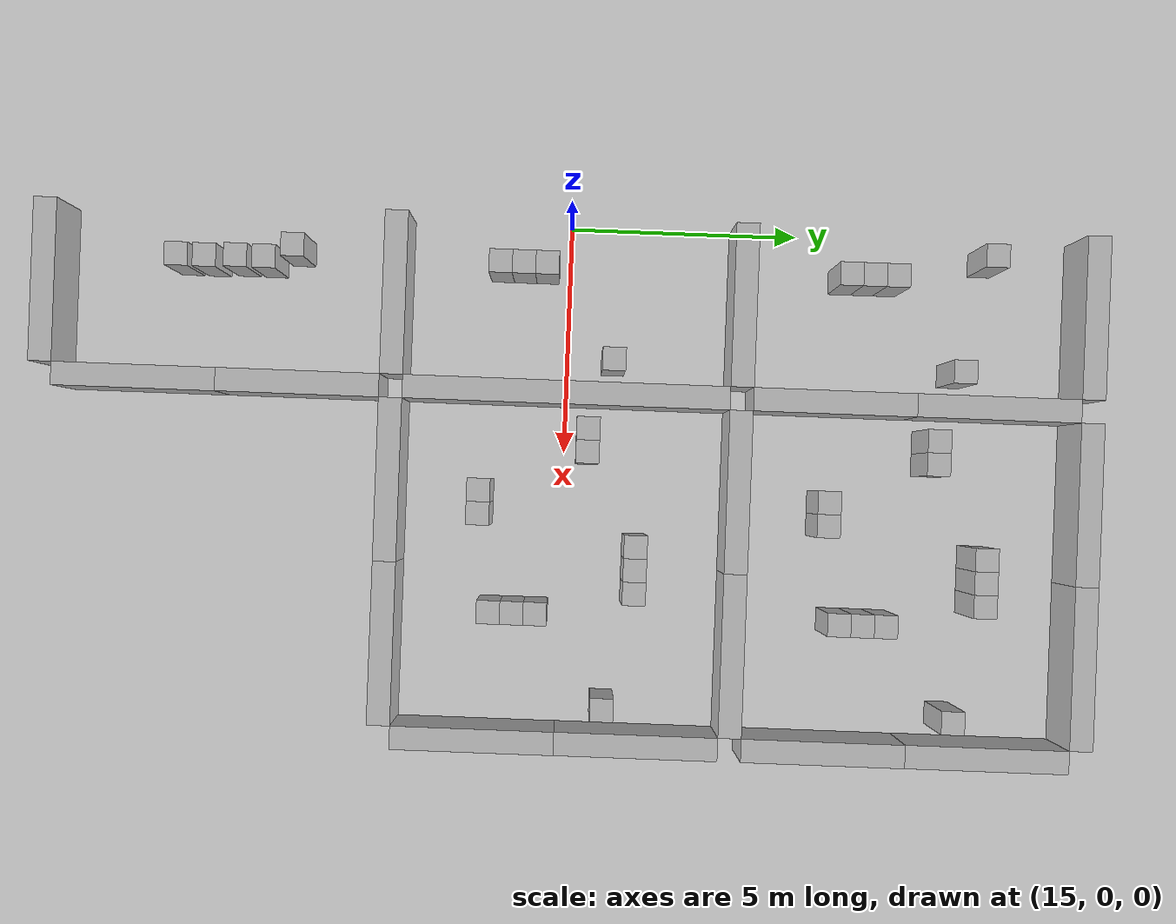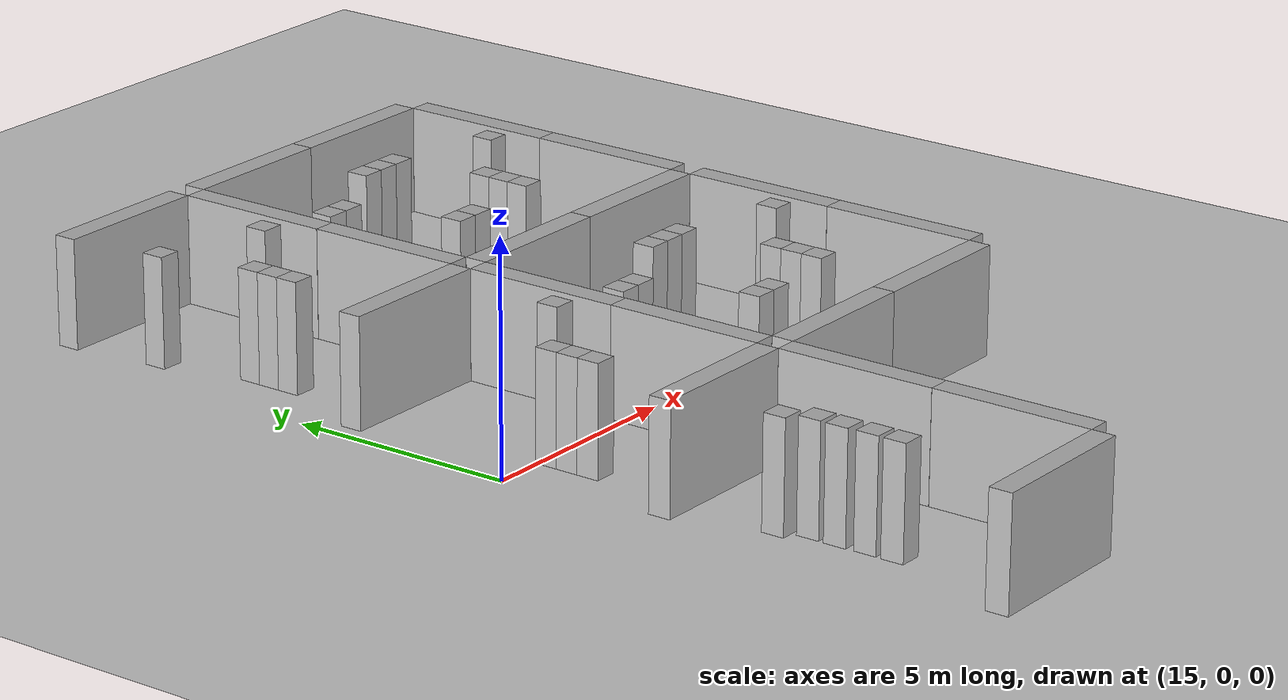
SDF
<sdf version="1.6">
 <world name="default">
  <model name="ground_plane">
   <static>1</static>
   <link name="link">
    <collision name="collision">
     <geometry><plane><normal>0 0 1</normal><size>100 100</size></plane></geometry>
     <surface><friction><ode><mu>100</mu><mu2>50</mu2></ode></friction></surface>
    </collision>
    <visual name="visual">
     <cast_shadows>0</cast_shadows>
     <geometry><plane><normal>0 0 1</normal><size>100 100</size></plane></geometry>
     <material>
      <script><uri>file://media/materials/scripts/gazebo.material</uri><name>Gazebo/Grey</name></script>
     </material>
    </visual>
   </link>
  </model>
  <model name="mywall0_1_clone_1_clone_0">
   <static>1</static>
   <link name="link">
    <pose>0 0 1.4 0 -0 0</pose>
    <collision name="collision"><geometry><box><size>3.5 0.5 2.4</size></box></geometry></collision>
    <visual name="visual">
     <cast_shadows>0</cast_shadows>
     <geometry><box><size>3.5 0.5 2.4</size></box></geometry>
     <material>
      <script>
       <uri>model://mywall0/materials/scripts</uri>
       <uri>model://mywall0/materials/textures</uri>
       <name>vrc/mywall0</name>
      </script>
     </material>
    </visual>
   </link>
   <pose>16.75 3.75 0 0 -0 0</pose>
  </model>
  <model name="mywall0_1_clone_1_clone_1">
   <static>1</static>
   <link name="link">
    <pose>0 0 1.4 0 -0 0</pose>
    <collision name="collision"><geometry><box><size>3.5 0.5 2.4</size></box></geometry></collision>
    <visual name="visual">
     <cast_shadows>0</cast_shadows>
     <geometry><box><size>3.5 0.5 2.4</size></box></geometry>
     <material>
      <script>
       <uri>model://mywall0/materials/scripts</uri>
       <uri>model://mywall0/materials/textures</uri>
       <name>vrc/mywall0</name>
      </script>
     </material>
    </visual>
   </link>
   <pose>16.75 -3.75 0 0 -0 0</pose>
  </model>
  <model name="mywall0_4_clone_0_clone_clone_0">
   <static>1</static>
   <link name="link">
    <pose>0 0 1.4 0 -0 0</pose>
    <collision name="collision"><geometry><box><size>3.5 0.5 2.4</size></box></geometry></collision>
    <visual name="visual">
     <cast_shadows>0</cast_shadows>
     <geometry><box><size>3.5 0.5 2.4</size></box></geometry>
     <material>
      <script>
       <uri>model://mywall0/materials/scripts</uri>
       <uri>model://mywall0/materials/textures</uri>
       <name>vrc/mywall0</name>
      </script>
     </material>
    </visual>
   </link>
   <pose>18.75 1.75 0 0 -0 1.57</pose>
  </model>
  <model name="mywall0_4_clone_0_clone_clone_0_clone">
   <static>1</static>
   <link name="link">
    <pose>0 0 1.4 0 -0 0</pose>
    <collision name="collision"><geometry><box><size>3.5 0.5 2.4</size></box></geometry></collision>
    <visual name="visual">
     <cast_shadows>0</cast_shadows>
     <geometry><box><size>3.5 0.5 2.4</size></box></geometry>
     <material>
      <script>
       <uri>model://mywall0/materials/scripts</uri>
       <uri>model://mywall0/materials/textures</uri>
       <name>vrc/mywall0</name>
      </script>
     </material>
    </visual>
   </link>
   <pose>18.75 -1.75 0 0 -0 1.57</pose>
  </model>
  <model name="mywall0_1_clone_1_clone_2">
   <static>1</static>
   <link name="link">
    <pose>0 0 1.4 0 -0 0</pose>
    <collision name="collision"><geometry><box><size>3.5 0.5 2.4</size></box></geometry></collision>
    <visual name="visual">
     <cast_shadows>0</cast_shadows>
     <geometry><box><size>3.5 0.5 2.4</size></box></geometry>
     <material>
      <script>
       <uri>model://mywall0/materials/scripts</uri>
       <uri>model://mywall0/materials/textures</uri>
       <name>vrc/mywall0</name>
      </script>
     </material>
    </visual>
   </link>
   <pose>20.75 3.75 0 0 -0 0</pose>
  </model>
  <model name="mywall0_1_clone_1_clone_3">
   <static>1</static>
   <link name="link">
    <pose>0 0 1.4 0 -0 0</pose>
    <collision name="collision"><geometry><box><size>3.5 0.5 2.4</size></box></geometry></collision>
    <visual name="visual">
     <cast_shadows>0</cast_shadows>
     <geometry><box><size>3.5 0.5 2.4</size></box></geometry>
     <material>
      <script>
       <uri>model://mywall0/materials/scripts</uri>
       <uri>model://mywall0/materials/textures</uri>
       <name>vrc/mywall0</name>
      </script>
     </material>
    </visual>
   </link>
   <pose>24.25 3.75 0 0 -0 0</pose>
  </model>
  <model name="mywall0_1_clone_1_clone_4">
   <static>1</static>
   <link name="link">
    <pose>0 0 1.4 0 -0 0</pose>
    <collision name="collision"><geometry><box><size>3.5 0.5 2.4</size></box></geometry></collision>
    <visual name="visual">
     <cast_shadows>0</cast_shadows>
     <geometry><box><size>3.5 0.5 2.4</size></box></geometry>
     <material>
      <script>
       <uri>model://mywall0/materials/scripts</uri>
       <uri>model://mywall0/materials/textures</uri>
       <name>vrc/mywall0</name>
      </script>
     </material>
    </visual>
   </link>
   <pose>20.75 -3.75 0 0 -0 0</pose>
  </model>
  <model name="mywall0_1_clone_1_clone_5">
   <static>1</static>
   <link name="link">
    <pose>0 0 1.4 0 -0 0</pose>
    <collision name="collision"><geometry><box><size>3.5 0.5 2.4</size></box></geometry></collision>
    <visual name="visual">
     <cast_shadows>0</cast_shadows>
     <geometry><box><size>3.5 0.5 2.4</size></box></geometry>
     <material>
      <script>
       <uri>model://mywall0/materials/scripts</uri>
       <uri>model://mywall0/materials/textures</uri>
       <name>vrc/mywall0</name>
      </script>
     </material>
    </visual>
   </link>
   <pose>24.25 -3.75 0 0 -0 0</pose>
  </model>
  <model name="mywall0_4_clone_0_clone_clone_0_clone_0">
   <static>1</static>
   <link name="link">
    <pose>0 0 1.4 0 -0 0</pose>
    <collision name="collision"><geometry><box><size>3.5 0.5 2.4</size></box></geometry></collision>
    <visual name="visual">
     <cast_shadows>0</cast_shadows>
     <geometry><box><size>3.5 0.5 2.4</size></box></geometry>
     <material>
      <script>
       <uri>model://mywall0/materials/scripts</uri>
       <uri>model://mywall0/materials/textures</uri>
       <name>vrc/mywall0</name>
      </script>
     </material>
    </visual>
   </link>
   <pose>26.25 1.75 0 0 -0 1.57</pose>
  </model>
  <model name="mywall0_4_clone_0_clone_clone_0_clone_1">
   <static>1</static>
   <link name="link">
    <pose>0 0 1.4 0 -0 0</pose>
    <collision name="collision"><geometry><box><size>3.5 0.5 2.4</size></box></geometry></collision>
    <visual name="visual">
     <cast_shadows>0</cast_shadows>
     <geometry><box><size>3.5 0.5 2.4</size></box></geometry>
     <material>
      <script>
       <uri>model://mywall0/materials/scripts</uri>
       <uri>model://mywall0/materials/textures</uri>
       <name>vrc/mywall0</name>
      </script>
     </material>
    </visual>
   </link>
   <pose>26.25 -1.75 0 0 -0 1.57</pose>
  </model>
  <model name="mywall0_4_clone_0_clone_clone_0_clone_8">
   <static>1</static>
   <link name="link">
    <pose>0 0 1.4 0 -0 0</pose>
    <collision name="collision"><geometry><box><size>3.5 0.5 2.4</size></box></geometry></collision>
    <visual name="visual">
     <cast_shadows>0</cast_shadows>
     <geometry><box><size>3.5 0.5 2.4</size></box></geometry>
     <material>
      <script>
       <uri>model://mywall0/materials/scripts</uri>
       <uri>model://mywall0/materials/textures</uri>
       <name>vrc/mywall0</name>
      </script>
     </material>
    </visual>
   </link>
   <pose>18.75 5.75 0 0 -0 1.57</pose>
  </model>
  <model name="mywall0_4_clone_0_clone_clone_0_clone_9">
   <static>1</static>
   <link name="link">
    <pose>0 0 1.4 0 -0 0</pose>
    <collision name="collision"><geometry><box><size>3.5 0.5 2.4</size></box></geometry></collision>
    <visual name="visual">
     <cast_shadows>0</cast_shadows>
     <geometry><box><size>3.5 0.5 2.4</size></box></geometry>
     <material>
      <script>
       <uri>model://mywall0/materials/scripts</uri>
       <uri>model://mywall0/materials/textures</uri>
       <name>vrc/mywall0</name>
      </script>
     </material>
    </visual>
   </link>
   <pose>18.75 9.25 0 0 -0 1.57</pose>
  </model>
  <model name="mywall0_4_clone_0_clone_clone_0_clone_10">
   <static>1</static>
   <link name="link">
    <pose>0 0 1.4 0 -0 0</pose>
    <collision name="collision"><geometry><box><size>3.5 0.5 2.4</size></box></geometry></collision>
    <visual name="visual">
     <cast_shadows>0</cast_shadows>
     <geometry><box><size>3.5 0.5 2.4</size></box></geometry>
     <material>
      <script>
       <uri>model://mywall0/materials/scripts</uri>
       <uri>model://mywall0/materials/textures</uri>
       <name>vrc/mywall0</name>
      </script>
     </material>
    </visual>
   </link>
   <pose>26.25 5.75 0 0 -0 1.57</pose>
  </model>
  <model name="mywall0_4_clone_0_clone_clone_0_clone_11">
   <static>1</static>
   <link name="link">
    <pose>0 0 1.4 0 -0 0</pose>
    <collision name="collision"><geometry><box><size>3.5 0.5 2.4</size></box></geometry></collision>
    <visual name="visual">
     <cast_shadows>0</cast_shadows>
     <geometry><box><size>3.5 0.5 2.4</size></box></geometry>
     <material>
      <script>
       <uri>model://mywall0/materials/scripts</uri>
       <uri>model://mywall0/materials/textures</uri>
       <name>vrc/mywall0</name>
      </script>
     </material>
    </visual>
   </link>
   <pose>26.25 9.25 0 0 -0 1.57</pose>
  </model>
  <model name="mywall0_1_clone_1_clone_3_clone">
   <static>1</static>
   <link name="link">
    <pose>0 0 1.4 0 -0 0</pose>
    <collision name="collision"><geometry><box><size>3.5 0.5 2.4</size></box></geometry></collision>
    <visual name="visual">
     <cast_shadows>0</cast_shadows>
     <geometry><box><size>3.5 0.5 2.4</size></box></geometry>
     <material>
      <script>
       <uri>model://mywall0/materials/scripts</uri>
       <uri>model://mywall0/materials/textures</uri>
       <name>vrc/mywall0</name>
      </script>
     </material>
    </visual>
   </link>
   <pose>24.25 11.25 0 0 -0 0</pose>
  </model>
  <model name="mywall0_1_clone_1_clone_3_clone_0">
   <static>1</static>
   <link name="link">
    <pose>0 0 1.4 0 -0 0</pose>
    <collision name="collision"><geometry><box><size>3.5 0.5 2.4</size></box></geometry></collision>
    <visual name="visual">
     <cast_shadows>0</cast_shadows>
     <geometry><box><size>3.5 0.5 2.4</size></box></geometry>
     <material>
      <script>
       <uri>model://mywall0/materials/scripts</uri>
       <uri>model://mywall0/materials/textures</uri>
       <name>vrc/mywall0</name>
      </script>
     </material>
    </visual>
   </link>
   <pose>20.75 11.25 0 0 -0 0</pose>
  </model>
  <model name="mywall0_1_clone_1_clone_3_clone_1">
   <static>1</static>
   <link name="link">
    <pose>0 0 1.4 0 -0 0</pose>
    <collision name="collision"><geometry><box><size>3.5 0.5 2.4</size></box></geometry></collision>
    <visual name="visual">
     <cast_shadows>0</cast_shadows>
     <geometry><box><size>3.5 0.5 2.4</size></box></geometry>
     <material>
      <script>
       <uri>model://mywall0/materials/scripts</uri>
       <uri>model://mywall0/materials/textures</uri>
       <name>vrc/mywall0</name>
      </script>
     </material>
    </visual>
   </link>
   <pose>16.75 11.25 0 0 -0 0</pose>
  </model>
  <model name="mypillar_1_clone_clone_4">
   <static>1</static>
   <link name="link">
    <pose>0 0 1.4 0 -0 0</pose>
    <collision name="collision"><geometry><box><size>0.5 0.5 2.4</size></box></geometry></collision>
    <visual name="visual">
     <cast_shadows>0</cast_shadows>
     <geometry><box><size>0.5 0.5 2.4</size></box></geometry>
     <material>
      <script>
       <uri>model://mypillar/materials/scripts</uri>
       <uri>model://mypillar/materials/textures</uri>
       <name>vrc/mypillar</name>
      </script>
     </material>
    </visual>
   </link>
   <pose>16 -1.5 0 0 -0 0</pose>
  </model>
  <model name="mypillar_1_clone_clone_4_clone">
   <static>1</static>
   <link name="link">
    <pose>0 0 1.4 0 -0 0</pose>
    <collision name="collision"><geometry><box><size>0.5 0.5 2.4</size></box></geometry></collision>
    <visual name="visual">
     <cast_shadows>0</cast_shadows>
     <geometry><box><size>0.5 0.5 2.4</size></box></geometry>
     <material>
      <script>
       <uri>model://mypillar/materials/scripts</uri>
       <uri>model://mypillar/materials/textures</uri>
       <name>vrc/mypillar</name>
      </script>
     </material>
    </visual>
   </link>
   <pose>16 -1 0 0 -0 0</pose>
  </model>
  <model name="mypillar_1_clone_clone_4_clone_0">
   <static>1</static>
   <link name="link">
    <pose>0 0 1.4 0 -0 0</pose>
    <collision name="collision"><geometry><box><size>0.5 0.5 2.4</size></box></geometry></collision>
    <visual name="visual">
     <cast_shadows>0</cast_shadows>
     <geometry><box><size>0.5 0.5 2.4</size></box></geometry>
     <material>
      <script>
       <uri>model://mypillar/materials/scripts</uri>
       <uri>model://mypillar/materials/textures</uri>
       <name>vrc/mypillar</name>
      </script>
     </material>
    </visual>
   </link>
   <pose>16 -0.5 0 0 -0 0</pose>
  </model>
  <model name="mypillar_1_clone_clone_4_clone_1">
   <static>1</static>
   <link name="link">
    <pose>0 0 1.4 0 -0 0</pose>
    <collision name="collision"><geometry><box><size>0.5 0.5 2.4</size></box></geometry></collision>
    <visual name="visual">
     <cast_shadows>0</cast_shadows>
     <geometry><box><size>0.5 0.5 2.4</size></box></geometry>
     <material>
      <script>
       <uri>model://mypillar/materials/scripts</uri>
       <uri>model://mypillar/materials/textures</uri>
       <name>vrc/mypillar</name>
      </script>
     </material>
    </visual>
   </link>
   <pose>18 1 0 0 -0 0</pose>
  </model>
  <model name="mypillar_1_clone_clone_4_clone_2_clone_3">
   <static>1</static>
   <link name="link">
    <pose>0 0 1.4 0 -0 0</pose>
    <collision name="collision"><geometry><box><size>0.5 0.5 2.4</size></box></geometry></collision>
    <visual name="visual">
     <cast_shadows>0</cast_shadows>
     <geometry><box><size>0.5 0.5 2.4</size></box></geometry>
     <material>
      <script>
       <uri>model://mypillar/materials/scripts</uri>
       <uri>model://mypillar/materials/textures</uri>
       <name>vrc/mypillar</name>
      </script>
     </material>
    </visual>
   </link>
   <pose>15.5 9.1 0 0 -0 0</pose>
  </model>
  <model name="mypillar_1_clone_clone_4_clone_2_clone_6">
   <static>1</static>
   <link name="link">
    <pose>0 0 1.4 0 -0 0</pose>
    <collision name="collision"><geometry><box><size>0.5 0.5 2.4</size></box></geometry></collision>
    <visual name="visual">
     <cast_shadows>0</cast_shadows>
     <geometry><box><size>0.5 0.5 2.4</size></box></geometry>
     <material>
      <script>
       <uri>model://mypillar/materials/scripts</uri>
       <uri>model://mypillar/materials/textures</uri>
       <name>vrc/mypillar</name>
      </script>
     </material>
    </visual>
   </link>
   <pose>16 6.5 0 0 -0 0</pose>
  </model>
  <model name="mypillar_1_clone_clone_4_clone_2_clone_7">
   <static>1</static>
   <link name="link">
    <pose>0 0 1.4 0 -0 0</pose>
    <collision name="collision"><geometry><box><size>0.5 0.5 2.4</size></box></geometry></collision>
    <visual name="visual">
     <cast_shadows>0</cast_shadows>
     <geometry><box><size>0.5 0.5 2.4</size></box></geometry>
     <material>
      <script>
       <uri>model://mypillar/materials/scripts</uri>
       <uri>model://mypillar/materials/textures</uri>
       <name>vrc/mypillar</name>
      </script>
     </material>
    </visual>
   </link>
   <pose>16 6 0 0 -0 0</pose>
  </model>
  <model name="mypillar_1_clone_clone_4_clone_2_clone_8">
   <static>1</static>
   <link name="link">
    <pose>0 0 1.4 0 -0 0</pose>
    <collision name="collision"><geometry><box><size>0.5 0.5 2.4</size></box></geometry></collision>
    <visual name="visual">
     <cast_shadows>0</cast_shadows>
     <geometry><box><size>0.5 0.5 2.4</size></box></geometry>
     <material>
      <script>
       <uri>model://mypillar/materials/scripts</uri>
       <uri>model://mypillar/materials/textures</uri>
       <name>vrc/mypillar</name>
      </script>
     </material>
    </visual>
   </link>
   <pose>16 7 0 0 -0 0</pose>
  </model>
  <model name="mypillar_1_clone_clone_4_clone_2_clone_9">
   <static>1</static>
   <link name="link">
    <pose>0 0 1.4 0 -0 0</pose>
    <collision name="collision"><geometry><box><size>0.5 0.5 2.4</size></box></geometry></collision>
    <visual name="visual">
     <cast_shadows>0</cast_shadows>
     <geometry><box><size>0.5 0.5 2.4</size></box></geometry>
     <material>
      <script>
       <uri>model://mypillar/materials/scripts</uri>
       <uri>model://mypillar/materials/textures</uri>
       <name>vrc/mypillar</name>
      </script>
     </material>
    </visual>
   </link>
   <pose>18 8.5 0 0 -0 0</pose>
  </model>
  <model name="mypillar_1_clone_clone_4_clone_2_clone_10">
   <static>1</static>
   <link name="link">
    <pose>0 0 1.4 0 -0 0</pose>
    <collision name="collision"><geometry><box><size>0.5 0.5 2.4</size></box></geometry></collision>
    <visual name="visual">
     <cast_shadows>0</cast_shadows>
     <geometry><box><size>0.5 0.5 2.4</size></box></geometry>
     <material>
      <script>
       <uri>model://mypillar/materials/scripts</uri>
       <uri>model://mypillar/materials/textures</uri>
       <name>vrc/mypillar</name>
      </script>
     </material>
    </visual>
   </link>
   <pose>19.5 8 0 0 -0 0</pose>
  </model>
  <model name="mypillar_1_clone_clone_4_clone_2_clone_11">
   <static>1</static>
   <link name="link">
    <pose>0 0 1.4 0 -0 0</pose>
    <collision name="collision"><geometry><box><size>0.5 0.5 2.4</size></box></geometry></collision>
    <visual name="visual">
     <cast_shadows>0</cast_shadows>
     <geometry><box><size>0.5 0.5 2.4</size></box></geometry>
     <material>
      <script>
       <uri>model://mypillar/materials/scripts</uri>
       <uri>model://mypillar/materials/textures</uri>
       <name>vrc/mypillar</name>
      </script>
     </material>
    </visual>
   </link>
   <pose>20 8 0 0 -0 0</pose>
  </model>
  <model name="mypillar_1_clone_clone_4_clone_2_clone_12">
   <static>1</static>
   <link name="link">
    <pose>0 0 1.4 0 -0 0</pose>
    <collision name="collision"><geometry><box><size>0.5 0.5 2.4</size></box></geometry></collision>
    <visual name="visual">
     <cast_shadows>0</cast_shadows>
     <geometry><box><size>0.5 0.5 2.4</size></box></geometry>
     <material>
      <script>
       <uri>model://mypillar/materials/scripts</uri>
       <uri>model://mypillar/materials/textures</uri>
       <name>vrc/mypillar</name>
      </script>
     </material>
    </visual>
   </link>
   <pose>22 9.1 0 0 -0 0</pose>
  </model>
  <model name="mypillar_1_clone_clone_4_clone_2_clone_13">
   <static>1</static>
   <link name="link">
    <pose>0 0 1.4 0 -0 0</pose>
    <collision name="collision"><geometry><box><size>0.5 0.5 2.4</size></box></geometry></collision>
    <visual name="visual">
     <cast_shadows>0</cast_shadows>
     <geometry><box><size>0.5 0.5 2.4</size></box></geometry>
     <material>
      <script>
       <uri>model://mypillar/materials/scripts</uri>
       <uri>model://mypillar/materials/textures</uri>
       <name>vrc/mypillar</name>
      </script>
     </material>
    </visual>
   </link>
   <pose>22.5 9.1 0 0 -0 0</pose>
  </model>
  <model name="mypillar_1_clone_clone_4_clone_2_clone_14">
   <static>1</static>
   <link name="link">
    <pose>0 0 1.4 0 -0 0</pose>
    <collision name="collision"><geometry><box><size>0.5 0.5 2.4</size></box></geometry></collision>
    <visual name="visual">
     <cast_shadows>0</cast_shadows>
     <geometry><box><size>0.5 0.5 2.4</size></box></geometry>
     <material>
      <script>
       <uri>model://mypillar/materials/scripts</uri>
       <uri>model://mypillar/materials/textures</uri>
       <name>vrc/mypillar</name>
      </script>
     </material>
    </visual>
   </link>
   <pose>23 9.1 0 0 -0 0</pose>
  </model>
  <model name="mypillar_1_clone_clone_4_clone_2_clone_15">
   <static>1</static>
   <link name="link">
    <pose>0 0 1.4 0 -0 0</pose>
    <collision name="collision"><geometry><box><size>0.5 0.5 2.4</size></box></geometry></collision>
    <visual name="visual">
     <cast_shadows>0</cast_shadows>
     <geometry><box><size>0.5 0.5 2.4</size></box></geometry>
     <material>
      <script>
       <uri>model://mypillar/materials/scripts</uri>
       <uri>model://mypillar/materials/textures</uri>
       <name>vrc/mypillar</name>
      </script>
     </material>
    </visual>
   </link>
   <pose>25.5 8.5 0 0 -0 0</pose>
  </model>
  <model name="mypillar_1_clone_clone_4_clone_2_clone_16">
   <static>1</static>
   <link name="link">
    <pose>0 0 1.4 0 -0 0</pose>
    <collision name="collision"><geometry><box><size>0.5 0.5 2.4</size></box></geometry></collision>
    <visual name="visual">
     <cast_shadows>0</cast_shadows>
     <geometry><box><size>0.5 0.5 2.4</size></box></geometry>
     <material>
      <script>
       <uri>model://mypillar/materials/scripts</uri>
       <uri>model://mypillar/materials/textures</uri>
       <name>vrc/mypillar</name>
      </script>
     </material>
    </visual>
   </link>
   <pose>23.5 7 0 0 -0 0</pose>
  </model>
  <model name="mypillar_1_clone_clone_4_clone_2_clone_17">
   <static>1</static>
   <link name="link">
    <pose>0 0 1.4 0 -0 0</pose>
    <collision name="collision"><geometry><box><size>0.5 0.5 2.4</size></box></geometry></collision>
    <visual name="visual">
     <cast_shadows>0</cast_shadows>
     <geometry><box><size>0.5 0.5 2.4</size></box></geometry>
     <material>
      <script>
       <uri>model://mypillar/materials/scripts</uri>
       <uri>model://mypillar/materials/textures</uri>
       <name>vrc/mypillar</name>
      </script>
     </material>
    </visual>
   </link>
   <pose>23.5 6.5 0 0 -0 0</pose>
  </model>
  <model name="mypillar_1_clone_clone_4_clone_2_clone_18">
   <static>1</static>
   <link name="link">
    <pose>0 0 1.4 0 -0 0</pose>
    <collision name="collision"><geometry><box><size>0.5 0.5 2.4</size></box></geometry></collision>
    <visual name="visual">
     <cast_shadows>0</cast_shadows>
     <geometry><box><size>0.5 0.5 2.4</size></box></geometry>
     <material>
      <script>
       <uri>model://mypillar/materials/scripts</uri>
       <uri>model://mypillar/materials/textures</uri>
       <name>vrc/mypillar</name>
      </script>
     </material>
    </visual>
   </link>
   <pose>23.5 6 0 0 -0 0</pose>
  </model>
  <model name="mypillar_1_clone_clone_4_clone_2_clone_19">
   <static>1</static>
   <link name="link">
    <pose>0 0 1.4 0 -0 0</pose>
    <collision name="collision"><geometry><box><size>0.5 0.5 2.4</size></box></geometry></collision>
    <visual name="visual">
     <cast_shadows>0</cast_shadows>
     <geometry><box><size>0.5 0.5 2.4</size></box></geometry>
     <material>
      <script>
       <uri>model://mypillar/materials/scripts</uri>
       <uri>model://mypillar/materials/textures</uri>
       <name>vrc/mypillar</name>
      </script>
     </material>
    </visual>
   </link>
   <pose>20.9 5.7 0 0 -0 0</pose>
  </model>
  <model name="mypillar_1_clone_clone_4_clone_2_clone_20">
   <static>1</static>
   <link name="link">
    <pose>0 0 1.4 0 -0 0</pose>
    <collision name="collision"><geometry><box><size>0.5 0.5 2.4</size></box></geometry></collision>
    <visual name="visual">
     <cast_shadows>0</cast_shadows>
     <geometry><box><size>0.5 0.5 2.4</size></box></geometry>
     <material>
      <script>
       <uri>model://mypillar/materials/scripts</uri>
       <uri>model://mypillar/materials/textures</uri>
       <name>vrc/mypillar</name>
      </script>
     </material>
    </visual>
   </link>
   <pose>21.4 5.7 0 0 -0 0</pose>
  </model>
  <model name="mypillar_1_clone_clone_4_clone_2_clone_21">
   <static>1</static>
   <link name="link">
    <pose>0 0 1.4 0 -0 0</pose>
    <collision name="collision"><geometry><box><size>0.5 0.5 2.4</size></box></geometry></collision>
    <visual name="visual">
     <cast_shadows>0</cast_shadows>
     <geometry><box><size>0.5 0.5 2.4</size></box></geometry>
     <material>
      <script>
       <uri>model://mypillar/materials/scripts</uri>
       <uri>model://mypillar/materials/textures</uri>
       <name>vrc/mypillar</name>
      </script>
     </material>
    </visual>
   </link>
   <pose>19.5 0.5 0 0 -0 0</pose>
  </model>
  <model name="mypillar_1_clone_clone_4_clone_2_clone_22">
   <static>1</static>
   <link name="link">
    <pose>0 0 1.4 0 -0 0</pose>
    <collision name="collision"><geometry><box><size>0.5 0.5 2.4</size></box></geometry></collision>
    <visual name="visual">
     <cast_shadows>0</cast_shadows>
     <geometry><box><size>0.5 0.5 2.4</size></box></geometry>
     <material>
      <script>
       <uri>model://mypillar/materials/scripts</uri>
       <uri>model://mypillar/materials/textures</uri>
       <name>vrc/mypillar</name>
      </script>
     </material>
    </visual>
   </link>
   <pose>20 0.5 0 0 -0 0</pose>
  </model>
  <model name="mypillar_1_clone_clone_4_clone_2_clone_23">
   <static>1</static>
   <link name="link">
    <pose>0 0 1.4 0 -0 0</pose>
    <collision name="collision"><geometry><box><size>0.5 0.5 2.4</size></box></geometry></collision>
    <visual name="visual">
     <cast_shadows>0</cast_shadows>
     <geometry><box><size>0.5 0.5 2.4</size></box></geometry>
     <material>
      <script>
       <uri>model://mypillar/materials/scripts</uri>
       <uri>model://mypillar/materials/textures</uri>
       <name>vrc/mypillar</name>
      </script>
     </material>
    </visual>
   </link>
   <pose>22 1.6 0 0 -0 0</pose>
  </model>
  <model name="mypillar_1_clone_clone_4_clone_2_clone_24">
   <static>1</static>
   <link name="link">
    <pose>0 0 1.4 0 -0 0</pose>
    <collision name="collision"><geometry><box><size>0.5 0.5 2.4</size></box></geometry></collision>
    <visual name="visual">
     <cast_shadows>0</cast_shadows>
     <geometry><box><size>0.5 0.5 2.4</size></box></geometry>
     <material>
      <script>
       <uri>model://mypillar/materials/scripts</uri>
       <uri>model://mypillar/materials/textures</uri>
       <name>vrc/mypillar</name>
      </script>
     </material>
    </visual>
   </link>
   <pose>22.5 1.6 0 0 -0 0</pose>
  </model>
  <model name="mypillar_1_clone_clone_4_clone_2_clone_25">
   <static>1</static>
   <link name="link">
    <pose>0 0 1.4 0 -0 0</pose>
    <collision name="collision"><geometry><box><size>0.5 0.5 2.4</size></box></geometry></collision>
    <visual name="visual">
     <cast_shadows>0</cast_shadows>
     <geometry><box><size>0.5 0.5 2.4</size></box></geometry>
     <material>
      <script>
       <uri>model://mypillar/materials/scripts</uri>
       <uri>model://mypillar/materials/textures</uri>
       <name>vrc/mypillar</name>
      </script>
     </material>
    </visual>
   </link>
   <pose>23 1.6 0 0 -0 0</pose>
  </model>
  <model name="mypillar_1_clone_clone_4_clone_2_clone_26">
   <static>1</static>
   <link name="link">
    <pose>0 0 1.4 0 -0 0</pose>
    <collision name="collision"><geometry><box><size>0.5 0.5 2.4</size></box></geometry></collision>
    <visual name="visual">
     <cast_shadows>0</cast_shadows>
     <geometry><box><size>0.5 0.5 2.4</size></box></geometry>
     <material>
      <script>
       <uri>model://mypillar/materials/scripts</uri>
       <uri>model://mypillar/materials/textures</uri>
       <name>vrc/mypillar</name>
      </script>
     </material>
    </visual>
   </link>
   <pose>25.5 1 0 0 -0 0</pose>
  </model>
  <model name="mypillar_1_clone_clone_4_clone_2_clone_27">
   <static>1</static>
   <link name="link">
    <pose>0 0 1.4 0 -0 0</pose>
    <collision name="collision"><geometry><box><size>0.5 0.5 2.4</size></box></geometry></collision>
    <visual name="visual">
     <cast_shadows>0</cast_shadows>
     <geometry><box><size>0.5 0.5 2.4</size></box></geometry>
     <material>
      <script>
       <uri>model://mypillar/materials/scripts</uri>
       <uri>model://mypillar/materials/textures</uri>
       <name>vrc/mypillar</name>
      </script>
     </material>
    </visual>
   </link>
   <pose>23.5 -1 0 0 -0 0</pose>
  </model>
  <model name="mypillar_1_clone_clone_4_clone_2_clone_28">
   <static>1</static>
   <link name="link">
    <pose>0 0 1.4 0 -0 0</pose>
    <collision name="collision"><geometry><box><size>0.5 0.5 2.4</size></box></geometry></collision>
    <visual name="visual">
     <cast_shadows>0</cast_shadows>
     <geometry><box><size>0.5 0.5 2.4</size></box></geometry>
     <material>
      <script>
       <uri>model://mypillar/materials/scripts</uri>
       <uri>model://mypillar/materials/textures</uri>
       <name>vrc/mypillar</name>
      </script>
     </material>
    </visual>
   </link>
   <pose>23.5 -1.5 0 0 -0 0</pose>
  </model>
  <model name="mypillar_1_clone_clone_4_clone_2_clone_29">
   <static>1</static>
   <link name="link">
    <pose>0 0 1.4 0 -0 0</pose>
    <collision name="collision"><geometry><box><size>0.5 0.5 2.4</size></box></geometry></collision>
    <visual name="visual">
     <cast_shadows>0</cast_shadows>
     <geometry><box><size>0.5 0.5 2.4</size></box></geometry>
     <material>
      <script>
       <uri>model://mypillar/materials/scripts</uri>
       <uri>model://mypillar/materials/textures</uri>
       <name>vrc/mypillar</name>
      </script>
     </material>
    </visual>
   </link>
   <pose>23.5 -0.5 0 0 -0 0</pose>
  </model>
  <model name="mypillar_1_clone_clone_4_clone_2_clone_30">
   <static>1</static>
   <link name="link">
    <pose>0 0 1.4 0 -0 0</pose>
    <collision name="collision"><geometry><box><size>0.5 0.5 2.4</size></box></geometry></collision>
    <visual name="visual">
     <cast_shadows>0</cast_shadows>
     <geometry><box><size>0.5 0.5 2.4</size></box></geometry>
     <material>
      <script>
       <uri>model://mypillar/materials/scripts</uri>
       <uri>model://mypillar/materials/textures</uri>
       <name>vrc/mypillar</name>
      </script>
     </material>
    </visual>
   </link>
   <pose>20.9 -1.8 0 0 -0 0</pose>
  </model>
  <model name="mypillar_1_clone_clone_4_clone_2_clone_31">
   <static>1</static>
   <link name="link">
    <pose>0 0 1.4 0 -0 0</pose>
    <collision name="collision"><geometry><box><size>0.5 0.5 2.4</size></box></geometry></collision>
    <visual name="visual">
     <cast_shadows>0</cast_shadows>
     <geometry><box><size>0.5 0.5 2.4</size></box></geometry>
     <material>
      <script>
       <uri>model://mypillar/materials/scripts</uri>
       <uri>model://mypillar/materials/textures</uri>
       <name>vrc/mypillar</name>
      </script>
     </material>
    </visual>
   </link>
   <pose>21.4 -1.8 0 0 -0 0</pose>
  </model>
  <model name="mywall0_4_clone_1_clone_1_clone">
   <static>1</static>
   <link name="link">
    <pose>0 0 1.4 0 -0 0</pose>
    <collision name="collision"><geometry><box><size>3.5 0.5 2.4</size></box></geometry></collision>
    <visual name="visual">
     <cast_shadows>0</cast_shadows>
     <geometry><box><size>3.5 0.5 2.4</size></box></geometry>
     <material>
      <script>
       <uri>model://mywall0/materials/scripts</uri>
       <uri>model://mywall0/materials/textures</uri>
       <name>vrc/mywall0</name>
      </script>
     </material>
    </visual>
   </link>
   <pose>18.75 -5.75 0 0 -0 1.57</pose>
  </model>
  <model name="mywall0_4_clone_1_clone_1_clone_0">
   <static>1</static>
   <link name="link">
    <pose>0 0 1.4 0 -0 0</pose>
    <collision name="collision"><geometry><box><size>3.5 0.5 2.4</size></box></geometry></collision>
    <visual name="visual">
     <cast_shadows>0</cast_shadows>
     <geometry><box><size>3.5 0.5 2.4</size></box></geometry>
     <material>
      <script>
       <uri>model://mywall0/materials/scripts</uri>
       <uri>model://mywall0/materials/textures</uri>
       <name>vrc/mywall0</name>
      </script>
     </material>
    </visual>
   </link>
   <pose>18.75 -9.25 0 0 -0 1.57</pose>
  </model>
  <model name="mywall0_3_clone_0_clone_0_clone_0">
   <static>1</static>
   <link name="link">
    <pose>0 0 1.4 0 -0 0</pose>
    <collision name="collision"><geometry><box><size>3.5 0.5 2.4</size></box></geometry></collision>
    <visual name="visual">
     <cast_shadows>0</cast_shadows>
     <geometry><box><size>3.5 0.5 2.4</size></box></geometry>
     <material>
      <script>
       <uri>model://mywall0/materials/scripts</uri>
       <uri>model://mywall0/materials/textures</uri>
       <name>vrc/mywall0</name>
      </script>
     </material>
    </visual>
   </link>
   <pose>16.75 -11.25 0 0 -0 0</pose>
  </model>
  <model name="mypillar_clone_clone_2_clone_7">
   <static>1</static>
   <link name="link">
    <pose>0 0 1.4 0 -0 0</pose>
    <collision name="collision"><geometry><box><size>0.5 0.5 2.4</size></box></geometry></collision>
    <visual name="visual">
     <cast_shadows>0</cast_shadows>
     <geometry><box><size>0.5 0.5 2.4</size></box></geometry>
     <material>
      <script>
       <uri>model://mypillar/materials/scripts</uri>
       <uri>model://mypillar/materials/textures</uri>
       <name>vrc/mypillar</name>
      </script>
     </material>
    </visual>
   </link>
   <pose>16.0856 -6.55782 0 0 -0 0</pose>
  </model>
  <model name="mypillar_clone_clone_2_clone_8">
   <static>1</static>
   <link name="link">
    <pose>0 0 1.4 0 -0 0</pose>
    <collision name="collision"><geometry><box><size>0.5 0.5 2.4</size></box></geometry></collision>
    <visual name="visual">
     <cast_shadows>0</cast_shadows>
     <geometry><box><size>0.5 0.5 2.4</size></box></geometry>
     <material>
      <script>
       <uri>model://mypillar/materials/scripts</uri>
       <uri>model://mypillar/materials/textures</uri>
       <name>vrc/mypillar</name>
      </script>
     </material>
    </visual>
   </link>
   <pose>16.0812 -7.16552 0 0 -0 0</pose>
  </model>
  <model name="mypillar_clone_clone_2_clone_9">
   <static>1</static>
   <link name="link">
    <pose>0 0 1.4 0 -0 0</pose>
    <collision name="collision"><geometry><box><size>0.5 0.5 2.4</size></box></geometry></collision>
    <visual name="visual">
     <cast_shadows>0</cast_shadows>
     <geometry><box><size>0.5 0.5 2.4</size></box></geometry>
     <material>
      <script>
       <uri>model://mypillar/materials/scripts</uri>
       <uri>model://mypillar/materials/textures</uri>
       <name>vrc/mypillar</name>
      </script>
     </material>
    </visual>
   </link>
   <pose>16.1063 -7.8251 0 0 -0 0</pose>
  </model>
  <model name="mypillar_clone_clone_2_clone_10">
   <static>1</static>
   <link name="link">
    <pose>0 0 1.4 0 -0 0</pose>
    <collision name="collision"><geometry><box><size>0.5 0.5 2.4</size></box></geometry></collision>
    <visual name="visual">
     <cast_shadows>0</cast_shadows>
     <geometry><box><size>0.5 0.5 2.4</size></box></geometry>
     <material>
      <script>
       <uri>model://mypillar/materials/scripts</uri>
       <uri>model://mypillar/materials/textures</uri>
       <name>vrc/mypillar</name>
      </script>
     </material>
    </visual>
   </link>
   <pose>16.1012 -8.42976 0 0 -0 0</pose>
  </model>
  <model name="mypillar_clone_clone_2_clone_clone_8">
   <static>1</static>
   <link name="link">
    <pose>0 0 1.4 0 -0 0</pose>
    <collision name="collision"><geometry><box><size>0.5 0.5 2.4</size></box></geometry></collision>
    <visual name="visual">
     <cast_shadows>0</cast_shadows>
     <geometry><box><size>0.5 0.5 2.4</size></box></geometry>
     <material>
      <script>
       <uri>model://mypillar/materials/scripts</uri>
       <uri>model://mypillar/materials/textures</uri>
       <name>vrc/mypillar</name>
      </script>
     </material>
    </visual>
   </link>
   <pose>15.8145 -5.95331 0 0 -0 0</pose>
  </model>
 </world>
</sdf>
